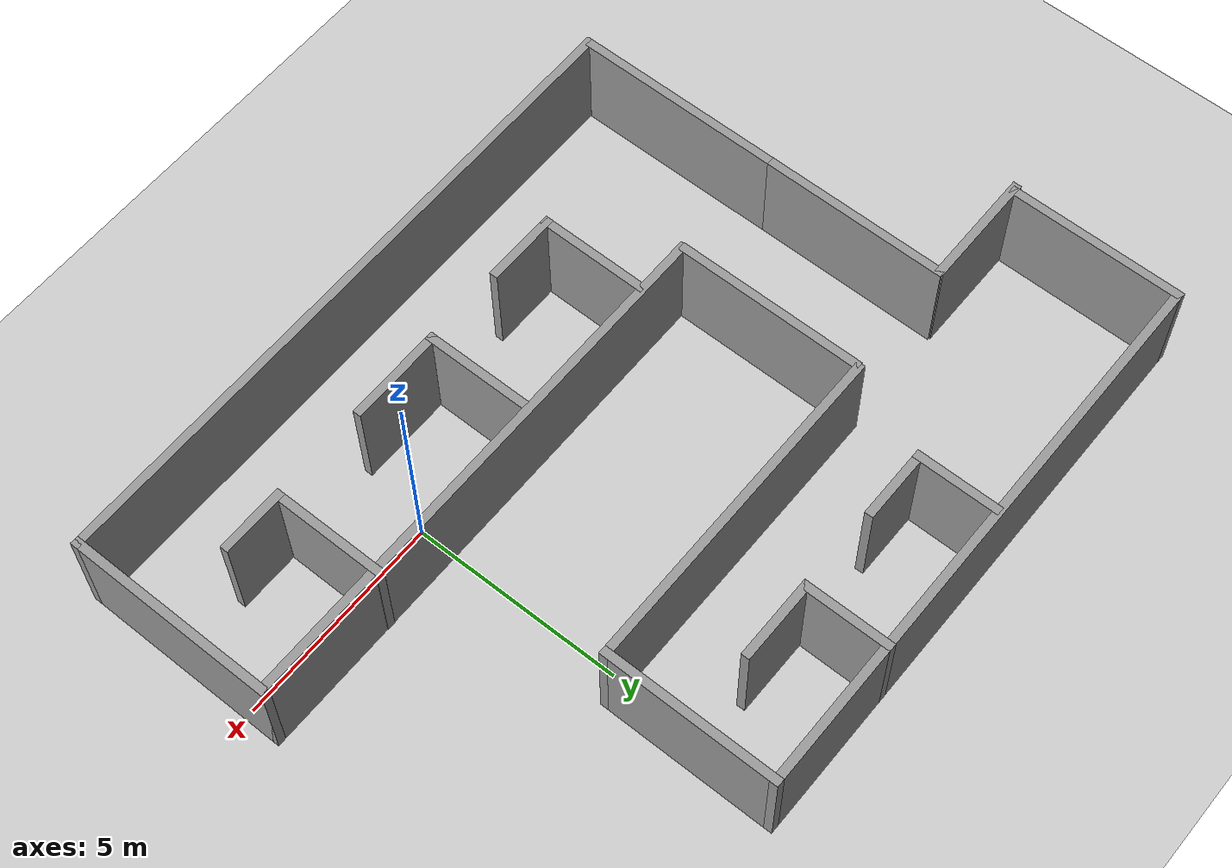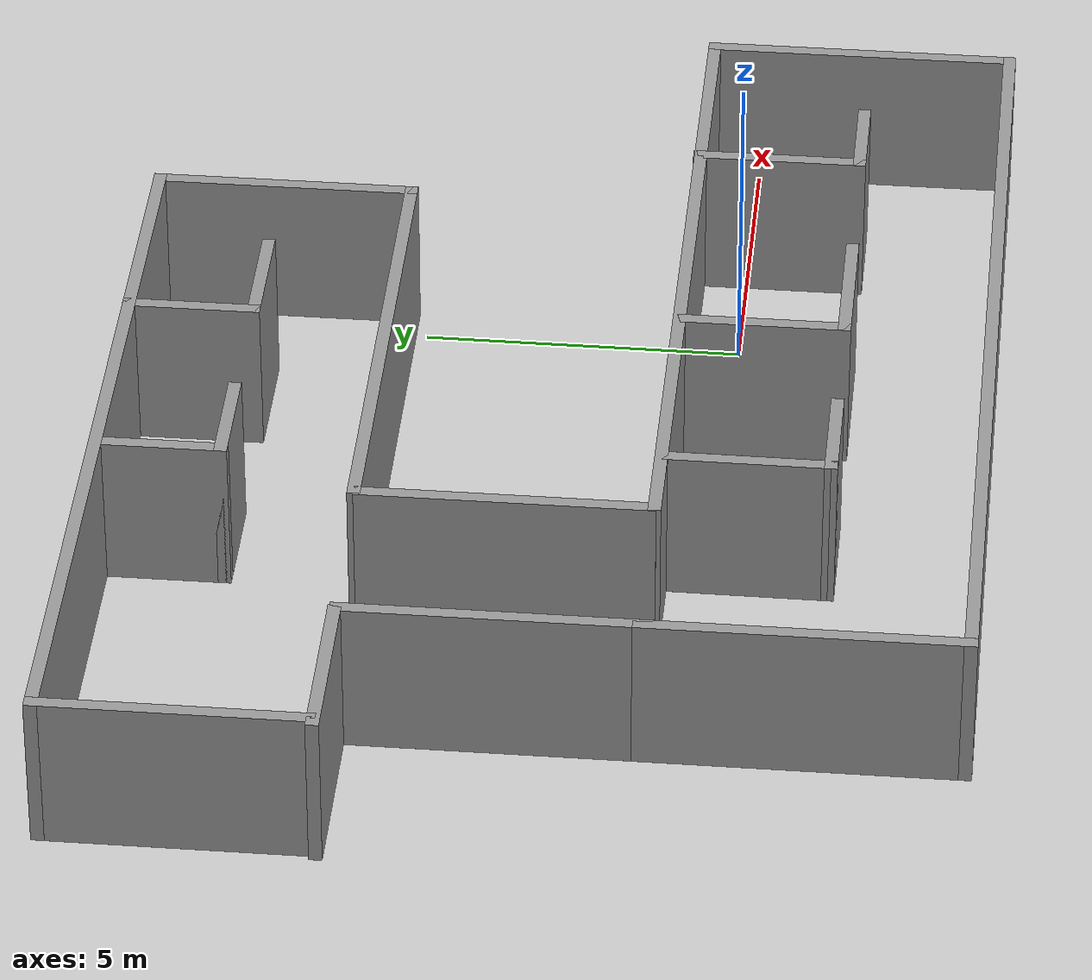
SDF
<?xml version='1.0'?>
<sdf version='1.4'>
	<world name="default">
		<physics type="ode">
      <gravity>0 0 -9.81</gravity>
      <ode>
        <solver>
          <type>quick</type>
          <iters>20</iters>
          <sor>1.0</sor>
        </solver>
        <constraints>
          <cfm>0.0</cfm>
          <erp>0.2</erp>
          <contact_max_correcting_vel>100.0</contact_max_correcting_vel>
          <contact_surface_layer>0.0</contact_surface_layer>
        </constraints>
      </ode>
      <real_time_update_rate>1000</real_time_update_rate>
      <max_step_size>0.001</max_step_size>
    </physics>
    <light type="directional" name="light1">
      <cast_shadows>true</cast_shadows>
      <pose>-2 0 4 0 0 0</pose>
      <diffuse>1.0 1.0 1.0 1</diffuse>
      <specular>0.1 0.1 0.1 1</specular>
      <attenuation>
        <range>20</range>
        <constant>0.9</constant>
        <linear>0.01</linear>
        <quadratic>0.001</quadratic>
      </attenuation>
      <direction>0.2 0.0 -1.0</direction>
    </light>
        <include>
      <uri>model://ground_plane</uri>
    </include>
  <model name='building4'>
    <link name='Wall_13'>
      <collision name='Wall_13_Collision'>
        <geometry>
          <box>
            <size>5.01 0.2 2.5</size>
          </box>
        </geometry>
        <pose>0 0 1.25 0 -0 0</pose>
      </collision>
      <visual name='Wall_13_Visual'>
        <pose>0 0 1.25 0 -0 0</pose>
        <geometry>
          <box>
            <size>5.01 0.2 2.5</size>
          </box>
        </geometry>
        <material>
          <script>
            <uri>file://media/materials/scripts/gazebo.material</uri>
            <name>Gazebo/Grey</name>
          </script>
        </material>
      </visual>
      <velocity_decay>
        <linear>0</linear>
        <angular>0</angular>
      </velocity_decay>
      <pose>-10.233 -1.616 0 0 0 -1.5708</pose>
    </link>
    <link name='Wall_14'>
      <collision name='Wall_14_Collision'>
        <geometry>
          <box>
            <size>15.55 0.2 2.5</size>
          </box>
        </geometry>
        <pose>0 0 1.25 0 -0 0</pose>
      </collision>
      <visual name='Wall_14_Visual'>
        <pose>0 0 1.25 0 -0 0</pose>
        <geometry>
          <box>
            <size>15.55 0.2 2.5</size>
          </box>
        </geometry>
        <material>
          <script>
            <uri>file://media/materials/scripts/gazebo.material</uri>
            <name>Gazebo/Grey</name>
          </script>
        </material>
      </visual>
      <velocity_decay>
        <linear>0</linear>
        <angular>0</angular>
      </velocity_decay>
      <pose>-2.55804 -4.02081 0 0 -0 2.5e-05</pose>
    </link>
    <link name='Wall_15'>
      <collision name='Wall_15_Collision'>
        <geometry>
          <box>
            <size>5.01 0.2 2.5</size>
          </box>
        </geometry>
        <pose>0 0 1.25 0 -0 0</pose>
      </collision>
      <visual name='Wall_15_Visual'>
        <pose>0 0 1.25 0 -0 0</pose>
        <geometry>
          <box>
            <size>5.01 0.2 2.5</size>
          </box>
        </geometry>
        <material>
          <script>
            <uri>file://media/materials/scripts/gazebo.material</uri>
            <name>Gazebo/Grey</name>
          </script>
        </material>
      </visual>
      <velocity_decay>
        <linear>0</linear>
        <angular>0</angular>
      </velocity_decay>
      <pose>5.11693 -1.61562 0 0 -0 1.5708</pose>
    </link>
    <link name='Wall_16'>
      <collision name='Wall_16_Collision'>
        <geometry>
          <box>
            <size>12.72 0.2 2.5</size>
          </box>
        </geometry>
        <pose>0 0 1.25 0 -0 0</pose>
      </collision>
      <visual name='Wall_16_Visual'>
        <pose>0 0 1.25 0 -0 0</pose>
        <geometry>
          <box>
            <size>12.72 0.2 2.5</size>
          </box>
        </geometry>
        <material>
          <script>
            <uri>file://media/materials/scripts/gazebo.material</uri>
            <name>Gazebo/Grey</name>
          </script>
        </material>
      </visual>
      <velocity_decay>
        <linear>0</linear>
        <angular>0</angular>
      </velocity_decay>
      <pose>-1.14308 0.789383 0 0 -0 3.14159</pose>
    </link>
    <link name='Wall_19'>
      <collision name='Wall_19_Collision'>
        <geometry>
          <box>
            <size>2.75243 0.2 2.5</size>
          </box>
        </geometry>
        <pose>0 0 1.25 0 -0 0</pose>
      </collision>
      <visual name='Wall_19_Visual'>
        <pose>0 0 1.25 0 -0 0</pose>
        <geometry>
          <box>
            <size>2.75243 0.2 2.5</size>
          </box>
        </geometry>
        <material>
          <script>
            <uri>file://media/materials/scripts/gazebo.material</uri>
            <name>Gazebo/Grey</name>
          </script>
        </material>
      </visual>
      <velocity_decay>
        <linear>0</linear>
        <angular>0</angular>
      </velocity_decay>
      <pose>1.95298 -0.471453 0 0 0 -1.5708</pose>
    </link>
    <link name='Wall_20'>
      <collision name='Wall_20_Collision'>
        <geometry>
          <box>
            <size>1.61606 0.2 2.5</size>
          </box>
        </geometry>
        <pose>0 0 1.25 0 -0 0</pose>
      </collision>
      <visual name='Wall_20_Visual'>
        <pose>0 0 1.25 0 -0 0</pose>
        <geometry>
          <box>
            <size>1.61606 0.2 2.5</size>
          </box>
        </geometry>
        <material>
          <script>
            <uri>file://media/materials/scripts/gazebo.material</uri>
            <name>Gazebo/Grey</name>
          </script>
        </material>
      </visual>
      <velocity_decay>
        <linear>0</linear>
        <angular>0</angular>
      </velocity_decay>
      <pose>2.66102 -1.74767 0 0 -0 0</pose>
    </link>
    <link name='Wall_22'>
      <collision name='Wall_22_Collision'>
        <geometry>
          <box>
            <size>2.69952 0.2 2.5</size>
          </box>
        </geometry>
        <pose>0 0 1.25 0 -0 0</pose>
      </collision>
      <visual name='Wall_22_Visual'>
        <pose>0 0 1.25 0 -0 0</pose>
        <geometry>
          <box>
            <size>2.69952 0.2 2.5</size>
          </box>
        </geometry>
        <material>
          <script>
            <uri>file://media/materials/scripts/gazebo.material</uri>
            <name>Gazebo/Grey</name>
          </script>
        </material>
      </visual>
      <velocity_decay>
        <linear>0</linear>
        <angular>0</angular>
      </velocity_decay>
      <pose>-2.56997 -0.511128 0 0 0 -1.5708</pose>
    </link>
    <link name='Wall_23'>
      <collision name='Wall_23_Collision'>
        <geometry>
          <box>
            <size>2.34347 0.2 2.5</size>
          </box>
        </geometry>
        <pose>0 0 1.25 0 -0 0</pose>
      </collision>
      <visual name='Wall_23_Visual'>
        <pose>0 0 1.25 0 -0 0</pose>
        <geometry>
          <box>
            <size>2.34347 0.2 2.5</size>
          </box>
        </geometry>
        <material>
          <script>
            <uri>file://media/materials/scripts/gazebo.material</uri>
            <name>Gazebo/Grey</name>
          </script>
        </material>
      </visual>
      <velocity_decay>
        <linear>0</linear>
        <angular>0</angular>
      </velocity_decay>
      <pose>-1.49823 -1.76089 0 0 -0 0</pose>
    </link>
    <link name='Wall_27'>
      <collision name='Wall_27_Collision'>
        <geometry>
          <box>
            <size>2.67304 0.2 2.5</size>
          </box>
        </geometry>
        <pose>0 0 1.25 0 -0 0</pose>
      </collision>
      <visual name='Wall_27_Visual'>
        <pose>0 0 1.25 0 -0 0</pose>
        <geometry>
          <box>
            <size>2.67304 0.2 2.5</size>
          </box>
        </geometry>
        <material>
          <script>
            <uri>file://media/materials/scripts/gazebo.material</uri>
            <name>Gazebo/Grey</name>
          </script>
        </material>
      </visual>
      <velocity_decay>
        <linear>0</linear>
        <angular>0</angular>
      </velocity_decay>
      <pose>-6.134 -0.5245 0 0 0 -1.57646</pose>
    </link>
    <link name='Wall_28'>
      <collision name='Wall_28_Collision'>
        <geometry>
          <box>
            <size>1.78778 0.2 2.5</size>
          </box>
        </geometry>
        <pose>0 0 1.25 0 -0 0</pose>
      </collision>
      <visual name='Wall_28_Visual'>
        <pose>0 0 1.25 0 -0 0</pose>
        <geometry>
          <box>
            <size>1.78778 0.2 2.5</size>
          </box>
        </geometry>
        <material>
          <script>
            <uri>file://media/materials/scripts/gazebo.material</uri>
            <name>Gazebo/Grey</name>
          </script>
        </material>
      </visual>
      <velocity_decay>
        <linear>0</linear>
        <angular>0</angular>
      </velocity_decay>
      <pose>-5.34711 -1.761 0 0 -0 0</pose>
    </link>
    <link name='Wall_30'>
      <collision name='Wall_30_Collision'>
        <geometry>
          <box>
            <size>4.722 0.2 2.5</size>
          </box>
        </geometry>
        <pose>0 0 1.25 0 -0 0</pose>
      </collision>
      <visual name='Wall_30_Visual'>
        <pose>0 0 1.25 0 -0 0</pose>
        <geometry>
          <box>
            <size>4.722 0.2 2.5</size>
          </box>
        </geometry>
        <material>
          <script>
            <uri>file://media/materials/scripts/gazebo.material</uri>
            <name>Gazebo/Grey</name>
          </script>
        </material>
      </visual>
      <velocity_decay>
        <linear>0</linear>
        <angular>0</angular>
      </velocity_decay>
      <pose>-10.233 2.952 0 0 -0 1.5708</pose>
    </link>
    <link name='Wall_32'>
      <collision name='Wall_32_Collision'>
        <geometry>
          <box>
            <size>4.52699 0.2 2.5</size>
          </box>
        </geometry>
        <pose>0 0 1.25 0 -0 0</pose>
      </collision>
      <visual name='Wall_32_Visual'>
        <pose>0 0 1.25 0 -0 0</pose>
        <geometry>
          <box>
            <size>4.52699 0.2 2.5</size>
          </box>
        </geometry>
        <material>
          <script>
            <uri>file://media/materials/scripts/gazebo.material</uri>
            <name>Gazebo/Grey</name>
          </script>
        </material>
      </visual>
      <velocity_decay>
        <linear>0</linear>
        <angular>0</angular>
      </velocity_decay>
      <pose>-7.41943 3.02427 0 0 -0 1.5708</pose>
    </link>
    <link name='Wall_35'>
      <collision name='Wall_35_Collision'>
        <geometry>
          <box>
            <size>2.80534 0.2 2.5</size>
          </box>
        </geometry>
        <pose>0 0 1.25 0 -0 0</pose>
      </collision>
      <visual name='Wall_35_Visual'>
        <pose>0 0 1.25 0 -0 0</pose>
        <geometry>
          <box>
            <size>2.80534 0.2 2.5</size>
          </box>
        </geometry>
        <material>
          <script>
            <uri>file://media/materials/scripts/gazebo.material</uri>
            <name>Gazebo/Grey</name>
          </script>
        </material>
      </visual>
      <velocity_decay>
        <linear>0</linear>
        <angular>0</angular>
      </velocity_decay>
      <pose>-11.5868 5.23749 0 0 -0 3.14159</pose>
    </link>
    <link name='Wall_38'>
      <collision name='Wall_38_Collision'>
        <geometry>
          <box>
            <size>4.19003 0.2 2.5</size>
          </box>
        </geometry>
        <pose>0 0 1.25 0 -0 0</pose>
      </collision>
      <visual name='Wall_38_Visual'>
        <pose>0 0 1.25 0 -0 0</pose>
        <geometry>
          <box>
            <size>4.19003 0.2 2.5</size>
          </box>
        </geometry>
        <material>
          <script>
            <uri>file://media/materials/scripts/gazebo.material</uri>
            <name>Gazebo/Grey</name>
          </script>
        </material>
      </visual>
      <velocity_decay>
        <linear>0</linear>
        <angular>0</angular>
      </velocity_decay>
      <pose>-12.8151 7.30342 0 0 -0 1.5708</pose>
    </link>
    <link name='Wall_39'>
      <collision name='Wall_39_Collision'>
        <geometry>
          <box>
            <size>13.5347 0.2 2.5</size>
          </box>
        </geometry>
        <pose>0 0 1.25 0 -0 0</pose>
      </collision>
      <visual name='Wall_39_Visual'>
        <pose>0 0 1.25 0 -0 0</pose>
        <geometry>
          <box>
            <size>13.5347 0.2 2.5</size>
          </box>
        </geometry>
        <material>
          <script>
            <uri>file://media/materials/scripts/gazebo.material</uri>
            <name>Gazebo/Grey</name>
          </script>
        </material>
      </visual>
      <velocity_decay>
        <linear>0</linear>
        <angular>0</angular>
      </velocity_decay>
      <pose>-6.14777 9.29843 0 0 -0 0</pose>
    </link>
    <link name='Wall_40'>
      <collision name='Wall_40_Collision'>
        <geometry>
          <box>
            <size>4.21663 0.2 2.5</size>
          </box>
        </geometry>
        <pose>0 0 1.25 0 -0 0</pose>
      </collision>
      <visual name='Wall_40_Visual'>
        <pose>0 0 1.25 0 -0 0</pose>
        <geometry>
          <box>
            <size>4.21663 0.2 2.5</size>
          </box>
        </geometry>
        <material>
          <script>
            <uri>file://media/materials/scripts/gazebo.material</uri>
            <name>Gazebo/Grey</name>
          </script>
        </material>
      </visual>
      <velocity_decay>
        <linear>0</linear>
        <angular>0</angular>
      </velocity_decay>
      <pose>0.51957 7.29012 0 0 0 -1.5708</pose>
    </link>
    <link name='Wall_41'>
      <collision name='Wall_41_Collision'>
        <geometry>
          <box>
            <size>8.1083 0.2 2.5</size>
          </box>
        </geometry>
        <pose>0 0 1.25 0 -0 0</pose>
      </collision>
      <visual name='Wall_41_Visual'>
        <pose>0 0 1.25 0 -0 0</pose>
        <geometry>
          <box>
            <size>8.1083 0.2 2.5</size>
          </box>
        </geometry>
        <material>
          <script>
            <uri>file://media/materials/scripts/gazebo.material</uri>
            <name>Gazebo/Grey</name>
          </script>
        </material>
      </visual>
      <velocity_decay>
        <linear>0</linear>
        <angular>0</angular>
      </velocity_decay>
      <pose>-3.43455 5.2818 0 0 -0 3.14159</pose>
    </link>
    <link name='Wall_43'>
      <collision name='Wall_43_Collision'>
        <geometry>
          <box>
            <size>2.14297 0.2 2.5</size>
          </box>
        </geometry>
        <pose>0 0 1.25 0 -0 0</pose>
      </collision>
      <visual name='Wall_43_Visual'>
        <pose>0 0 1.25 0 -0 0</pose>
        <geometry>
          <box>
            <size>2.14297 0.2 2.5</size>
          </box>
        </geometry>
        <material>
          <script>
            <uri>file://media/materials/scripts/gazebo.material</uri>
            <name>Gazebo/Grey</name>
          </script>
        </material>
      </visual>
      <velocity_decay>
        <linear>0</linear>
        <angular>0</angular>
      </velocity_decay>
      <pose>-2.91992 8.32953 0 0 0 -1.5708</pose>
    </link>
    <link name='Wall_44'>
      <collision name='Wall_44_Collision'>
        <geometry>
          <box>
            <size>1.98106 0.2 2.5</size>
          </box>
        </geometry>
        <pose>0 0 1.25 0 -0 0</pose>
      </collision>
      <visual name='Wall_44_Visual'>
        <pose>0 0 1.25 0 -0 0</pose>
        <geometry>
          <box>
            <size>1.98106 0.2 2.5</size>
          </box>
        </geometry>
        <material>
          <script>
            <uri>file://media/materials/scripts/gazebo.material</uri>
            <name>Gazebo/Grey</name>
          </script>
        </material>
      </visual>
      <velocity_decay>
        <linear>0</linear>
        <angular>0</angular>
      </velocity_decay>
      <pose>-2.02939 7.35804 0 0 -0 0</pose>
    </link>
    <link name='Wall_54'>
      <collision name='Wall_54_Collision'>
        <geometry>
          <box>
            <size>2.03541 0.2 2.5</size>
          </box>
        </geometry>
        <pose>0 0 1.25 0 -0 0</pose>
      </collision>
      <visual name='Wall_54_Visual'>
        <pose>0 0 1.25 0 -0 0</pose>
        <geometry>
          <box>
            <size>2.03541 0.2 2.5</size>
          </box>
        </geometry>
        <material>
          <script>
            <uri>file://media/materials/scripts/gazebo.material</uri>
            <name>Gazebo/Grey</name>
          </script>
        </material>
      </visual>
      <velocity_decay>
        <linear>0</linear>
        <angular>0</angular>
      </velocity_decay>
      <pose>-6.52977 8.31143 0 0 0 -1.5708</pose>
    </link>
    <link name='Wall_55'>
      <collision name='Wall_55_Collision'>
        <geometry>
          <box>
            <size>1.7601 0.2 2.5</size>
          </box>
        </geometry>
        <pose>0 0 1.25 0 -0 0</pose>
      </collision>
      <visual name='Wall_55_Visual'>
        <pose>0 0 1.25 0 -0 0</pose>
        <geometry>
          <box>
            <size>1.7601 0.2 2.5</size>
          </box>
        </geometry>
        <material>
          <script>
            <uri>file://media/materials/scripts/gazebo.material</uri>
            <name>Gazebo/Grey</name>
          </script>
        </material>
      </visual>
      <velocity_decay>
        <linear>0</linear>
        <angular>0</angular>
      </velocity_decay>
      <pose>-5.74972 7.39373 0 0 -0 0</pose>
    </link>
    <static>1</static>
  </model>
  </world>
</sdf>
